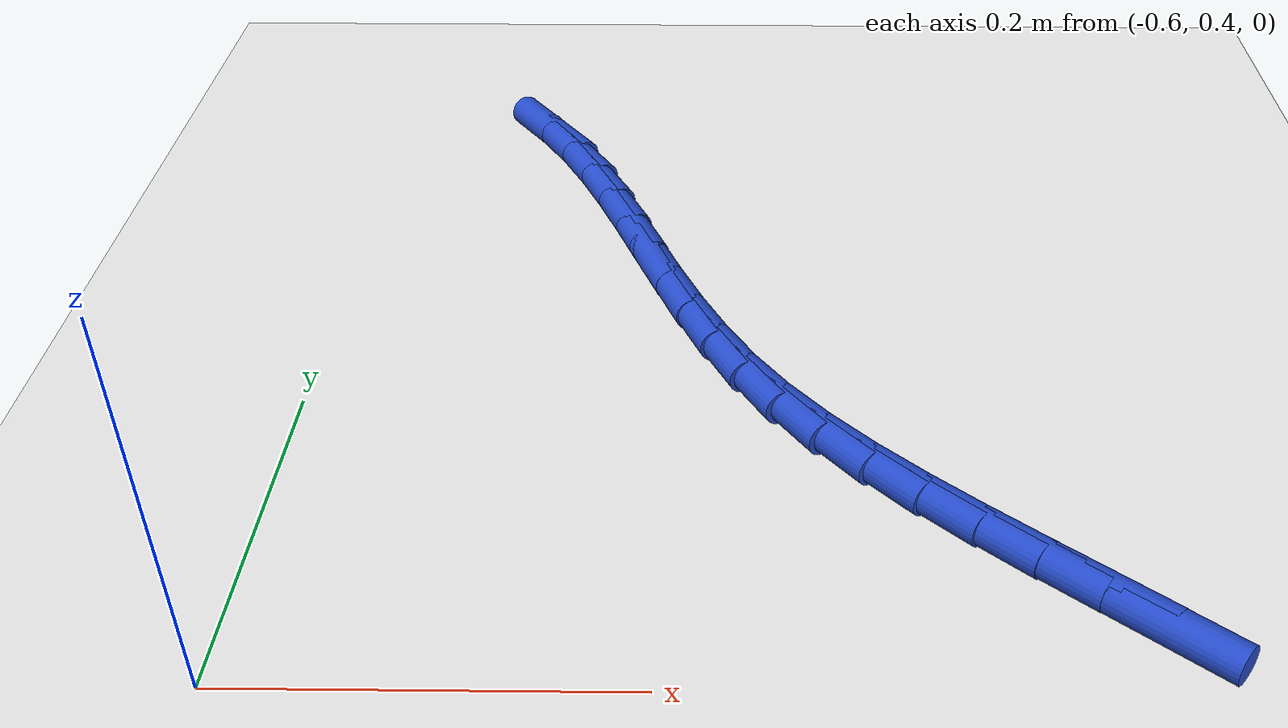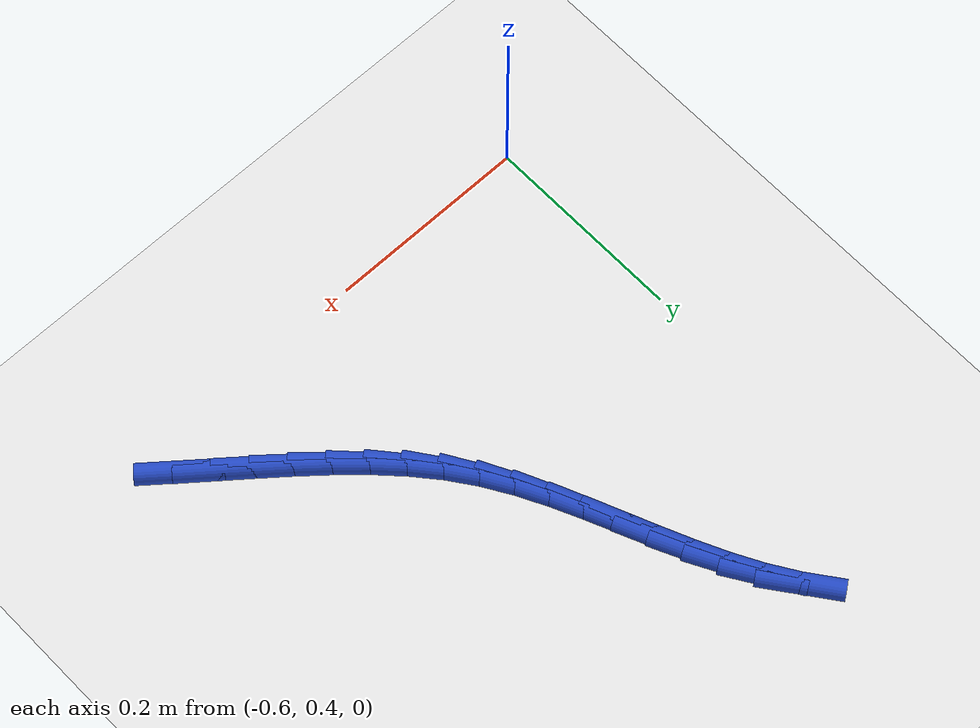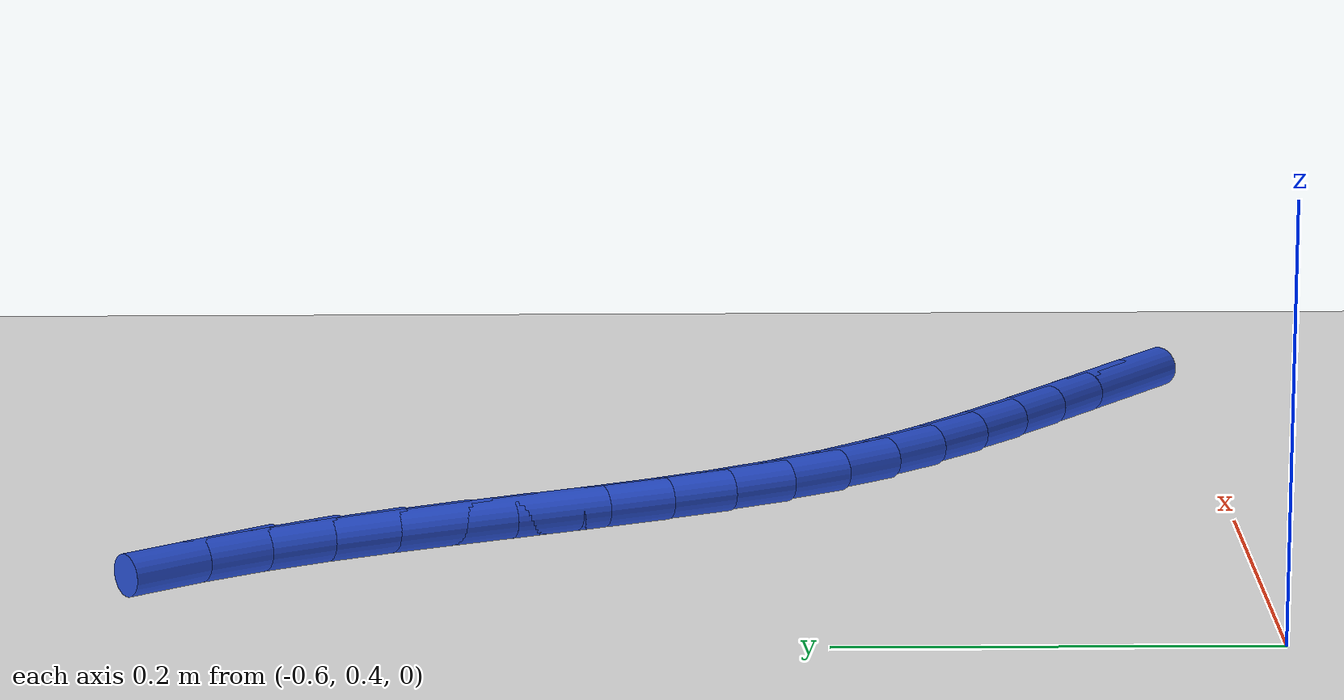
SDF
<sdf version="1.6">
 <world name="default">
  <model name="ground_plane">
   <static>1</static>
   <link name="link">
    <collision name="collision">
     <geometry><plane><normal>0 0 1</normal><size>100 100</size></plane></geometry>
     <surface><friction><ode><mu>100</mu><mu2>50</mu2></ode></friction></surface>
    </collision>
    <visual name="visual">
     <cast_shadows>0</cast_shadows>
     <geometry><plane><normal>0 0 1</normal><size>100 100</size></plane></geometry>
     <material>
      <script><uri>file://media/materials/scripts/gazebo.material</uri><name>Gazebo/WhiteGlow</name></script>
     </material>
    </visual>
   </link>
  </model>
  <model name="line">
   <link name="link_15">
    <pose>-0.17056184858116324 0.4347705457962814 0.01 0 1.57 -0.6907858462596165</pose>
    <collision name="collision">
     <geometry><cylinder><radius>0.01</radius><length>0.08</length></cylinder></geometry>
    </collision>
    <visual name="visual">
     <material>
      <script><name>Gazebo/Blue</name><uri>file://media/materials/scripts/gazebo.material</uri></script>
     </material>
     <geometry><cylinder><radius>0.01</radius><length>0.08</length></cylinder></geometry>
    </visual>
   </link>
   <link name="link_16">
    <pose>-0.19647693435331462 0.4561934616664306 0.01 0 1.57 -0.6856366315431752</pose>
    <collision name="collision">
     <geometry><cylinder><radius>0.01</radius><length>0.08</length></cylinder></geometry>
    </collision>
    <visual name="visual">
     <material>
      <script><name>Gazebo/Blue</name><uri>file://media/materials/scripts/gazebo.material</uri></script>
     </material>
     <geometry><cylinder><radius>0.01</radius><length>0.08</length></cylinder></geometry>
    </visual>
   </link>
   <link name="link_17">
    <pose>-0.22261582637338462 0.4775757752118352 0.01 0 1.57 -0.6938864126937246</pose>
    <collision name="collision">
     <geometry><cylinder><radius>0.01</radius><length>0.08</length></cylinder></geometry>
    </collision>
    <visual name="visual">
     <material>
      <script><name>Gazebo/Blue</name><uri>file://media/materials/scripts/gazebo.material</uri></script>
     </material>
     <geometry><cylinder><radius>0.01</radius><length>0.08</length></cylinder></geometry>
    </visual>
   </link>
   <link name="link_18">
    <pose>-0.24856987928633936 0.49916671620762 0.01 0 1.57 -0.7156566887445555</pose>
    <collision name="collision">
     <geometry><cylinder><radius>0.01</radius><length>0.08</length></cylinder></geometry>
    </collision>
    <visual name="visual">
     <material>
      <script><name>Gazebo/Blue</name><uri>file://media/materials/scripts/gazebo.material</uri></script>
     </material>
     <geometry><cylinder><radius>0.01</radius><length>0.08</length></cylinder></geometry>
    </visual>
   </link>
   <link name="link_19">
    <pose>-0.27393044773714487 0.5212155144289095 0.01 0 1.57 -0.7513971276584475</pose>
    <collision name="collision">
     <geometry><cylinder><radius>0.01</radius><length>0.08</length></cylinder></geometry>
    </collision>
    <visual name="visual">
     <material>
      <script><name>Gazebo/Blue</name><uri>file://media/materials/scripts/gazebo.material</uri></script>
     </material>
     <geometry><cylinder><radius>0.01</radius><length>0.08</length></cylinder></geometry>
    </visual>
   </link>
   <link name="link_20">
    <pose>-0.2982888863707673 0.5439713996508284 0.01 0 1.57 -0.8017820538927554</pose>
    <collision name="collision">
     <geometry><cylinder><radius>0.01</radius><length>0.08</length></cylinder></geometry>
    </collision>
    <visual name="visual">
     <material>
      <script><name>Gazebo/Blue</name><uri>file://media/materials/scripts/gazebo.material</uri></script>
     </material>
     <geometry><cylinder><radius>0.01</radius><length>0.08</length></cylinder></geometry>
    </visual>
   </link>
   <link name="link_21">
    <pose>-0.32123654983217254 0.567683601648501 0.01 0 1.57 -0.8675113863960809</pose>
    <collision name="collision">
     <geometry><cylinder><radius>0.01</radius><length>0.08</length></cylinder></geometry>
    </collision>
    <visual name="visual">
     <material>
      <script><name>Gazebo/Blue</name><uri>file://media/materials/scripts/gazebo.material</uri></script>
     </material>
     <geometry><cylinder><radius>0.01</radius><length>0.08</length></cylinder></geometry>
    </visual>
   </link>
   <link name="link_22">
    <pose>-0.3423647927663269 0.5926013501970524 0.01 0 1.57 -0.94869707503541</pose>
    <collision name="collision">
     <geometry><cylinder><radius>0.01</radius><length>0.08</length></cylinder></geometry>
    </collision>
    <visual name="visual">
     <material>
      <script><name>Gazebo/Blue</name><uri>file://media/materials/scripts/gazebo.material</uri></script>
     </material>
     <geometry><cylinder><radius>0.01</radius><length>0.08</length></cylinder></geometry>
    </visual>
   </link>
   <link name="link_23">
    <pose>-0.36127263551704075 0.6189690710990231 0.01 0 1.57 -1.031552007737878</pose>
    <collision name="collision">
     <geometry><cylinder><radius>0.01</radius><length>0.08</length></cylinder></geometry>
    </collision>
    <visual name="visual">
     <material>
      <script><name>Gazebo/Blue</name><uri>file://media/materials/scripts/gazebo.material</uri></script>
     </material>
     <geometry><cylinder><radius>0.01</radius><length>0.08</length></cylinder></geometry>
    </visual>
   </link>
   <link name="link_24">
    <pose>-0.37792708851723267 0.6468005765710287 0.01 0 1.57 -1.0961575629234763</pose>
    <collision name="collision">
     <geometry><cylinder><radius>0.01</radius><length>0.08</length></cylinder></geometry>
    </collision>
    <visual name="visual">
     <material>
      <script><name>Gazebo/Blue</name><uri>file://media/materials/scripts/gazebo.material</uri></script>
     </material>
     <geometry><cylinder><radius>0.01</radius><length>0.08</length></cylinder></geometry>
    </visual>
   </link>
   <link name="link_25">
    <pose>-0.39281815395392383 0.6757819281445621 0.01 0 1.57 -1.1409574798711377</pose>
    <collision name="collision">
     <geometry><cylinder><radius>0.01</radius><length>0.08</length></cylinder></geometry>
    </collision>
    <visual name="visual">
     <material>
      <script><name>Gazebo/Blue</name><uri>file://media/materials/scripts/gazebo.material</uri></script>
     </material>
     <geometry><cylinder><radius>0.01</radius><length>0.08</length></cylinder></geometry>
    </visual>
   </link>
   <link name="link_26">
    <pose>-0.4064757057961559 0.7055742003340725 0.01 0 1.57 -1.1663648958755957</pose>
    <collision name="collision">
     <geometry><cylinder><radius>0.01</radius><length>0.08</length></cylinder></geometry>
    </collision>
    <visual name="visual">
     <material>
      <script><name>Gazebo/Blue</name><uri>file://media/materials/scripts/gazebo.material</uri></script>
     </material>
     <geometry><cylinder><radius>0.01</radius><length>0.08</length></cylinder></geometry>
    </visual>
   </link>
   <link name="link_27">
    <pose>-0.41942961801296946 0.7358384676540073 0.01 0 1.57 -1.172797440958279</pose>
    <collision name="collision">
     <geometry><cylinder><radius>0.01</radius><length>0.08</length></cylinder></geometry>
    </collision>
    <visual name="visual">
     <material>
      <script><name>Gazebo/Blue</name><uri>file://media/materials/scripts/gazebo.material</uri></script>
     </material>
     <geometry><cylinder><radius>0.01</radius><length>0.08</length></cylinder></geometry>
    </visual>
   </link>
   <link name="link_28">
    <pose>-0.4322097645734062 0.766235804618816 0.01 0 1.57 -1.1604037165864045</pose>
    <collision name="collision">
     <geometry><cylinder><radius>0.01</radius><length>0.08</length></cylinder></geometry>
    </collision>
    <visual name="visual">
     <material>
      <script><name>Gazebo/Blue</name><uri>file://media/materials/scripts/gazebo.material</uri></script>
     </material>
     <geometry><cylinder><radius>0.01</radius><length>0.08</length></cylinder></geometry>
    </visual>
   </link>
   <link name="link_29">
    <pose>-0.44534601944650676 0.7964272857429463 0.01 0 1.57 -1.128999042828252</pose>
    <collision name="collision">
     <geometry><cylinder><radius>0.01</radius><length>0.08</length></cylinder></geometry>
    </collision>
    <visual name="visual">
     <material>
      <script><name>Gazebo/Blue</name><uri>file://media/materials/scripts/gazebo.material</uri></script>
     </material>
     <geometry><cylinder><radius>0.01</radius><length>0.08</length></cylinder></geometry>
    </visual>
   </link>
   <link name="link_30">
    <pose>-0.45936825660131286 0.8260739855408477 0.01 0 1.57 -1.078194699756277</pose>
    <collision name="collision">
     <geometry><cylinder><radius>0.01</radius><length>0.08</length></cylinder></geometry>
    </collision>
    <visual name="visual">
     <material>
      <script><name>Gazebo/Blue</name><uri>file://media/materials/scripts/gazebo.material</uri></script>
     </material>
     <geometry><cylinder><radius>0.01</radius><length>0.08</length></cylinder></geometry>
    </visual>
   </link>
   <link name="link_31">
    <pose>-0.4748063500068654 0.8548369785269678 0.01 0 1.57 -1.0085450246367451</pose>
    <collision name="collision">
     <geometry><cylinder><radius>0.01</radius><length>0.08</length></cylinder></geometry>
    </collision>
    <visual name="visual">
     <material>
      <script><name>Gazebo/Blue</name><uri>file://media/materials/scripts/gazebo.material</uri></script>
     </material>
     <geometry><cylinder><radius>0.01</radius><length>0.08</length></cylinder></geometry>
    </visual>
   </link>
   <link name="link_32">
    <pose>-0.49216643523968895 0.8823887253139763 0.01 0 1.57 -0.9329389567857763</pose>
    <collision name="collision">
     <geometry><cylinder><radius>0.01</radius><length>0.08</length></cylinder></geometry>
    </collision>
    <visual name="visual">
     <material>
      <script><name>Gazebo/Blue</name><uri>file://media/materials/scripts/gazebo.material</uri></script>
     </material>
     <geometry><cylinder><radius>0.01</radius><length>0.08</length></cylinder></geometry>
    </visual>
   </link>
  </model>
 </world>
</sdf>
